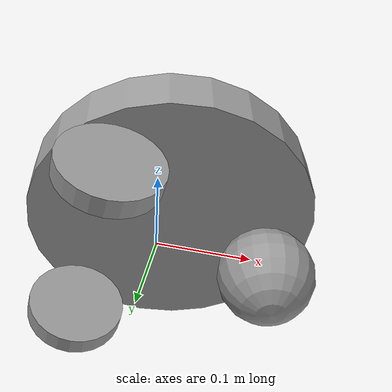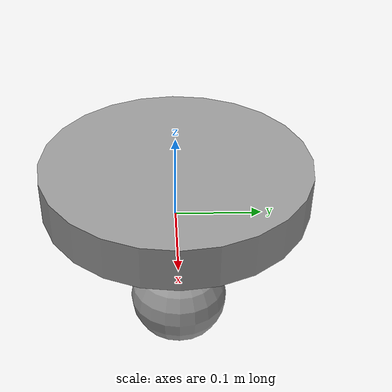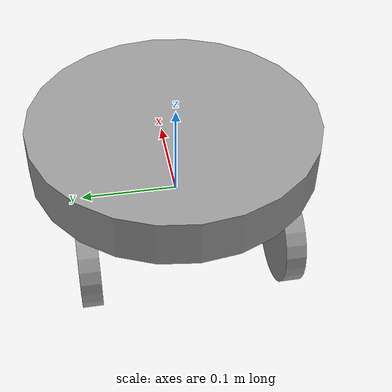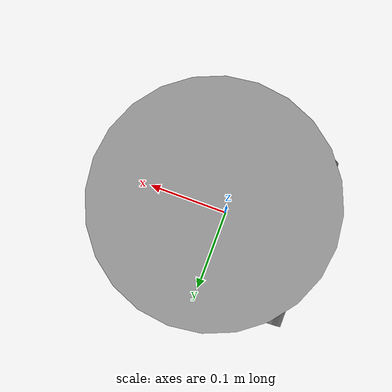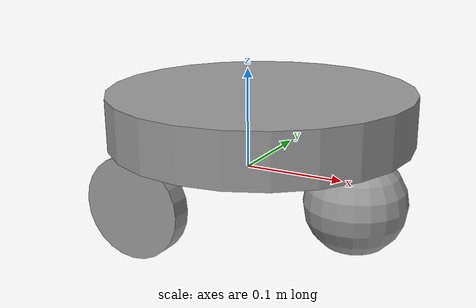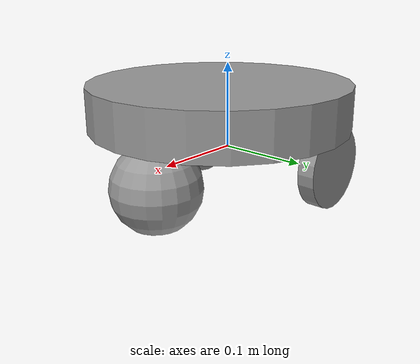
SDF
<?xml version='1.0'?>
<sdf version='1.7'>
  <model name='FNCD'>
    <link name='top'>
      <inertial>
        <mass>0.0115545</mass>
        <inertia>
          <ixx>6.788e-05</ixx>
          <ixy>0</ixy>
          <ixz>0</ixz>
          <iyy>6.788e-05</iyy>
          <iyz>0</iyz>
          <izz>0.00012999</izz>
        </inertia>
        <pose>0 0 0 0 -0 0</pose>
      </inertial>
      <pose>0.015 0 0.05625 0 -0 0</pose>
      <gravity>1</gravity>
      <self_collide>0</self_collide>
      <kinematic>0</kinematic>
      <enable_wind>0</enable_wind>
      <visual name='visual'>
        <pose>0 0 0 0 -0 0</pose>
        <geometry>
          <cylinder>
            <radius>0.15</radius>
            <length>0.05</length>
          </cylinder>
        </geometry>
        <material>
          <lighting>1</lighting>
          <script>
            <uri>file://media/materials/scripts/gazebo.material</uri>
            <name>Gazebo/Grey</name>
          </script>
          <shader type='pixel'>
            <normal_map>__default__</normal_map>
          </shader>
          <ambient>0.3 0.3 0.3 1</ambient>
          <diffuse>0.7 0.7 0.7 1</diffuse>
          <specular>0.01 0.01 0.01 1</specular>
          <emissive>0 0 0 1</emissive>
        </material>
        <transparency>0</transparency>
        <cast_shadows>1</cast_shadows>
      </visual>
      <collision name='collision'>
        <laser_retro>0</laser_retro>
        <max_contacts>10</max_contacts>
        <pose>0 0 0 0 -0 0</pose>
        <geometry>
          <cylinder>
            <radius>0.15</radius>
            <length>0.05</length>
          </cylinder>
        </geometry>
        <surface>
          <friction>
            <ode>
              <mu>1</mu>
              <mu2>1</mu2>
              <fdir1>0 0 0</fdir1>
              <slip1>0</slip1>
              <slip2>0</slip2>
            </ode>
            <torsional>
              <coefficient>1</coefficient>
              <patch_radius>0</patch_radius>
              <surface_radius>0</surface_radius>
              <use_patch_radius>1</use_patch_radius>
              <ode>
                <slip>0</slip>
              </ode>
            </torsional>
          </friction>
          <bounce>
            <restitution_coefficient>0</restitution_coefficient>
            <threshold>1e+06</threshold>
          </bounce>
          <contact>
            <collide_without_contact>0</collide_without_contact>
            <collide_without_contact_bitmask>1</collide_without_contact_bitmask>
            <collide_bitmask>1</collide_bitmask>
            <ode>
              <soft_cfm>0</soft_cfm>
              <soft_erp>0.2</soft_erp>
              <kp>1e+13</kp>
              <kd>1</kd>
              <max_vel>0.01</max_vel>
              <min_depth>0</min_depth>
            </ode>
            <bullet>
              <split_impulse>1</split_impulse>
              <split_impulse_penetration_threshold>-0.01</split_impulse_penetration_threshold>
              <soft_cfm>0</soft_cfm>
              <soft_erp>0.2</soft_erp>
              <kp>1e+13</kp>
              <kd>1</kd>
            </bullet>
          </contact>
        </surface>
      </collision>
    </link>
    <link name='right_wheel'>
      <inertial>
        <mass>1</mass>
        <inertia>
          <ixx>0.145833</ixx>
          <ixy>0</ixy>
          <ixz>0</ixz>
          <iyy>0.145833</iyy>
          <iyz>0</iyz>
          <izz>0.125</izz>
        </inertia>
        <pose>0 0 0 0 -0 0</pose>
      </inertial>
      <pose>-0.065 -0.1 -0.01875 1.5708 -0 0</pose>
      <gravity>1</gravity>
      <self_collide>0</self_collide>
      <kinematic>0</kinematic>
      <enable_wind>0</enable_wind>
      <visual name='visual'>
        <pose>0 0 0 0 -0 0</pose>
        <geometry>
          <cylinder>
            <radius>0.05</radius>
            <length>0.02</length>
          </cylinder>
        </geometry>
        <material>
          <lighting>1</lighting>
          <script>
            <uri>file://media/materials/scripts/gazebo.material</uri>
            <name>Gazebo/Grey</name>
          </script>
          <shader type='pixel'>
            <normal_map>__default__</normal_map>
          </shader>
          <ambient>0.3 0.3 0.3 1</ambient>
          <diffuse>0.7 0.7 0.7 1</diffuse>
          <specular>0.01 0.01 0.01 1</specular>
          <emissive>0 0 0 1</emissive>
        </material>
        <transparency>0</transparency>
        <cast_shadows>1</cast_shadows>
      </visual>
      <collision name='collision'>
        <laser_retro>0</laser_retro>
        <max_contacts>10</max_contacts>
        <pose>0 0 0 0 -0 0</pose>
        <geometry>
          <cylinder>
            <radius>0.05</radius>
            <length>0.02</length>
          </cylinder>
        </geometry>
        <surface>
          <friction>
            <ode>
              <mu>1</mu>
              <mu2>1</mu2>
              <fdir1>0 0 0</fdir1>
              <slip1>0</slip1>
              <slip2>0</slip2>
            </ode>
            <torsional>
              <coefficient>1</coefficient>
              <patch_radius>0</patch_radius>
              <surface_radius>0</surface_radius>
              <use_patch_radius>1</use_patch_radius>
              <ode>
                <slip>0</slip>
              </ode>
            </torsional>
          </friction>
          <bounce>
            <restitution_coefficient>0</restitution_coefficient>
            <threshold>1e+06</threshold>
          </bounce>
          <contact>
            <collide_without_contact>0</collide_without_contact>
            <collide_without_contact_bitmask>1</collide_without_contact_bitmask>
            <collide_bitmask>1</collide_bitmask>
            <ode>
              <soft_cfm>0</soft_cfm>
              <soft_erp>0.2</soft_erp>
              <kp>1e+13</kp>
              <kd>1</kd>
              <max_vel>0.01</max_vel>
              <min_depth>0</min_depth>
            </ode>
            <bullet>
              <split_impulse>1</split_impulse>
              <split_impulse_penetration_threshold>-0.01</split_impulse_penetration_threshold>
              <soft_cfm>0</soft_cfm>
              <soft_erp>0.2</soft_erp>
              <kp>1e+13</kp>
              <kd>1</kd>
            </bullet>
          </contact>
        </surface>
      </collision>
    </link>
    <link name='left_wheel'>
      <inertial>
        <mass>1</mass>
        <inertia>
          <ixx>0.145833</ixx>
          <ixy>0</ixy>
          <ixz>0</ixz>
          <iyy>0.145833</iyy>
          <iyz>0</iyz>
          <izz>0.125</izz>
        </inertia>
        <pose>-0.08 0.1 -0.425 0 -0 0</pose>
      </inertial>
      <pose>-0.065 0.1 -0.01875 1.5708 -0 0</pose>
      <gravity>1</gravity>
      <self_collide>0</self_collide>
      <kinematic>0</kinematic>
      <enable_wind>0</enable_wind>
      <visual name='visual'>
        <pose>0 0 0 0 -0 0</pose>
        <geometry>
          <cylinder>
            <radius>0.05</radius>
            <length>0.02</length>
          </cylinder>
        </geometry>
        <material>
          <lighting>1</lighting>
          <script>
            <uri>file://media/materials/scripts/gazebo.material</uri>
            <name>Gazebo/Grey</name>
          </script>
          <shader type='pixel'>
            <normal_map>__default__</normal_map>
          </shader>
          <ambient>0.3 0.3 0.3 1</ambient>
          <diffuse>0.7 0.7 0.7 1</diffuse>
          <specular>0.01 0.01 0.01 1</specular>
          <emissive>0 0 0 1</emissive>
        </material>
        <transparency>0</transparency>
        <cast_shadows>1</cast_shadows>
      </visual>
      <collision name='collision'>
        <laser_retro>0</laser_retro>
        <max_contacts>10</max_contacts>
        <pose>0 0 0 0 -0 0</pose>
        <geometry>
          <cylinder>
            <radius>0.05</radius>
            <length>0.02</length>
          </cylinder>
        </geometry>
        <surface>
          <friction>
            <ode>
              <mu>1</mu>
              <mu2>1</mu2>
              <fdir1>0 0 0</fdir1>
              <slip1>0</slip1>
              <slip2>0</slip2>
            </ode>
            <torsional>
              <coefficient>1</coefficient>
              <patch_radius>0</patch_radius>
              <surface_radius>0</surface_radius>
              <use_patch_radius>1</use_patch_radius>
              <ode>
                <slip>0</slip>
              </ode>
            </torsional>
          </friction>
          <bounce>
            <restitution_coefficient>0</restitution_coefficient>
            <threshold>1e+06</threshold>
          </bounce>
          <contact>
            <collide_without_contact>0</collide_without_contact>
            <collide_without_contact_bitmask>1</collide_without_contact_bitmask>
            <collide_bitmask>1</collide_bitmask>
            <ode>
              <soft_cfm>0</soft_cfm>
              <soft_erp>0.2</soft_erp>
              <kp>1e+13</kp>
              <kd>1</kd>
              <max_vel>0.01</max_vel>
              <min_depth>0</min_depth>
            </ode>
            <bullet>
              <split_impulse>1</split_impulse>
              <split_impulse_penetration_threshold>-0.01</split_impulse_penetration_threshold>
              <soft_cfm>0</soft_cfm>
              <soft_erp>0.2</soft_erp>
              <kp>1e+13</kp>
              <kd>1</kd>
            </bullet>
          </contact>
        </surface>
      </collision>
    </link>
    <link name='ball'>
      <inertial>
        <mass>1.19106</mass>
        <inertia>
          <ixx>0.00110433</ixx>
          <ixy>0</ixy>
          <ixz>0</ixz>
          <iyy>0.00110433</iyy>
          <iyz>0</iyz>
          <izz>0.00110433</izz>
        </inertia>
        <pose>0 0 0 0 -0 0</pose>
      </inertial>
      <pose>0.115 0 -0.01875 0 -0 0</pose>
      <gravity>1</gravity>
      <self_collide>0</self_collide>
      <kinematic>0</kinematic>
      <enable_wind>0</enable_wind>
      <visual name='visual'>
        <pose>0 0 0 0 -0 0</pose>
        <geometry>
          <sphere>
            <radius>0.05</radius>
          </sphere>
        </geometry>
        <material>
          <lighting>1</lighting>
          <script>
            <uri>file://media/materials/scripts/gazebo.material</uri>
            <name>Gazebo/Grey</name>
          </script>
          <shader type='pixel'>
            <normal_map>__default__</normal_map>
          </shader>
          <ambient>0.3 0.3 0.3 1</ambient>
          <diffuse>0.7 0.7 0.7 1</diffuse>
          <specular>0.01 0.01 0.01 1</specular>
          <emissive>0 0 0 1</emissive>
        </material>
        <transparency>0</transparency>
        <cast_shadows>1</cast_shadows>
      </visual>
      <collision name='collision'>
        <laser_retro>0</laser_retro>
        <max_contacts>10</max_contacts>
        <pose>0 0 0 0 -0 0</pose>
        <geometry>
          <sphere>
            <radius>0.05</radius>
          </sphere>
        </geometry>
        <surface>
          <friction>
            <ode>
              <mu>1</mu>
              <mu2>1</mu2>
              <fdir1>0 0 0</fdir1>
              <slip1>0</slip1>
              <slip2>0</slip2>
            </ode>
            <torsional>
              <coefficient>1</coefficient>
              <patch_radius>0</patch_radius>
              <surface_radius>0</surface_radius>
              <use_patch_radius>1</use_patch_radius>
              <ode>
                <slip>0</slip>
              </ode>
            </torsional>
          </friction>
          <bounce>
            <restitution_coefficient>0</restitution_coefficient>
            <threshold>1e+06</threshold>
          </bounce>
          <contact>
            <collide_without_contact>0</collide_without_contact>
            <collide_without_contact_bitmask>1</collide_without_contact_bitmask>
            <collide_bitmask>1</collide_bitmask>
            <ode>
              <soft_cfm>0</soft_cfm>
              <soft_erp>0.2</soft_erp>
              <kp>1e+13</kp>
              <kd>1</kd>
              <max_vel>0.01</max_vel>
              <min_depth>0</min_depth>
            </ode>
            <bullet>
              <split_impulse>1</split_impulse>
              <split_impulse_penetration_threshold>-0.01</split_impulse_penetration_threshold>
              <soft_cfm>0</soft_cfm>
              <soft_erp>0.2</soft_erp>
              <kp>1e+13</kp>
              <kd>1</kd>
            </bullet>
          </contact>
        </surface>
      </collision>
    </link>
    <joint name='top_joint_left' type='revolute'>
      <parent>top</parent>
      <child>left_wheel</child>
      <pose>0 0 0 0 -0 0</pose>
      <axis>
        <xyz>0 0 1</xyz>
        <limit>
          <lower>-1.79769e+308</lower>
          <upper>1.79769e+308</upper>
          <effort>-1</effort>
          <velocity>-1</velocity>
        </limit>
        <dynamics>
          <spring_reference>0</spring_reference>
          <spring_stiffness>0</spring_stiffness>
          <damping>0</damping>
        </dynamics>
      </axis>
      <physics>
        <ode>
          <limit>
            <cfm>0</cfm>
            <erp>0.2</erp>
          </limit>
          <suspension>
            <cfm>0</cfm>
            <erp>0.2</erp>
          </suspension>
        </ode>
      </physics>
    </joint>
    <joint name='top_joint_right' type='revolute'>
      <parent>top</parent>
      <child>right_wheel</child>
      <pose>0 0 0 0 -0 0</pose>
      <axis>
        <xyz>-0 -0 -1</xyz>
        <limit>
          <lower>-1.79769e+308</lower>
          <upper>1.79769e+308</upper>
          <effort>-1</effort>
          <velocity>-1</velocity>
        </limit>
        <dynamics>
          <spring_reference>0</spring_reference>
          <spring_stiffness>0</spring_stiffness>
          <damping>0</damping>
        </dynamics>
      </axis>
      <physics>
        <ode>
          <limit>
            <cfm>0</cfm>
            <erp>0.2</erp>
          </limit>
          <suspension>
            <cfm>0</cfm>
            <erp>0.2</erp>
          </suspension>
        </ode>
      </physics>
    </joint>
    <joint name='top_joint_ball' type='ball'>
      <parent>top</parent>
      <child>ball</child>
      <pose>0 0 0 0 -0 0</pose>
      <physics>
        <ode>
          <limit>
            <cfm>0</cfm>
            <erp>0.2</erp>
          </limit>
          <suspension>
            <cfm>0</cfm>
            <erp>0.2</erp>
          </suspension>
        </ode>
      </physics>
    </joint>
    <static>0</static>
    <allow_auto_disable>1</allow_auto_disable>
  </model>
</sdf>
